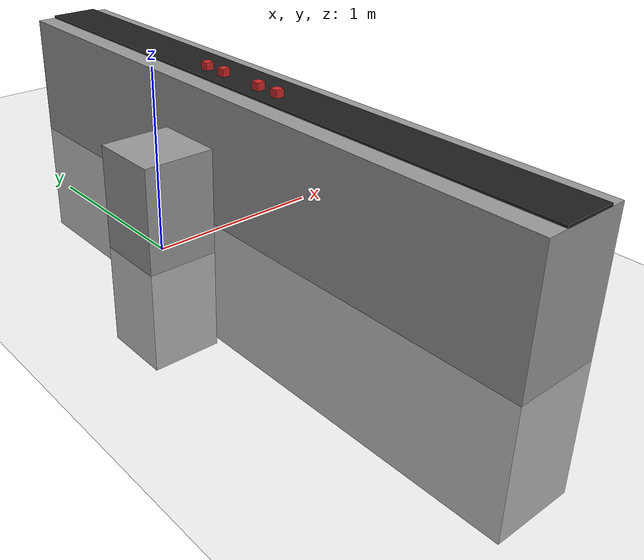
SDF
<sdf version="1.6">
 <world name="ur5_6_cubes">
  <gravity>0 0 -9.81</gravity>
  <physics name="default_physics" default="0" type="ode">
   <max_step_size>0.001</max_step_size>
   <real_time_factor>1</real_time_factor>
   <real_time_update_rate>1000</real_time_update_rate>
  </physics>
  <scene><ambient>0.4 0.4 0.4 1</ambient><background>0.7 0.7 0.7 1</background><shadows>1</shadows></scene>
  <include><uri>model://sun</uri></include>
  <include><uri>model://ground_plane</uri></include>
  <model name="base_central">
   <static>true</static>
   <link name="link">
    <inertial>
     <mass>0.0565</mass>
     <inertia>
      <ixx>2.3541666666666672e-05</ixx>
      <ixy>0</ixy>
      <ixz>0</ixz>
      <iyy>2.3541666666666672e-05</iyy>
      <iyz>0</iyz>
      <izz>2.3541666666666672e-05</izz>
     </inertia>
    </inertial>
    <collision name="collision">
     <geometry><box><size>0.4 0.4 1.17</size></box></geometry>
     <surface>
      <contact>
       <poissons_ratio>0.347</poissons_ratio>
       <elastic_modulus>8.8e+09</elastic_modulus>
       <ode><kp>100000</kp><kd>1</kd><max_vel>1.0</max_vel><min_depth>0.001</min_depth></ode>
      </contact>
      <friction>
       <torsional>
        <coefficient>1.0</coefficient>
        <use_patch_radius>0</use_patch_radius>
        <surface_radius>0.05</surface_radius>
       </torsional>
      </friction>
     </surface>
    </collision>
    <visual name="visual">
     <geometry><box><size>0.4 0.4 1.17</size></box></geometry>
     <material>
      <script><uri>file://media/materials/scripts/gazebo.material</uri><name>Gazebo/Gray</name></script>
     </material>
    </visual>
   </link>
  </model>
  <model name="BAse_conveyor_belt">
   <static>true</static>
   <pose>0.64 0 0 0 0 0</pose>
   <link name="link">
    <inertial>
     <mass>0.0565</mass>
     <inertia>
      <ixx>2.3541666666666672e-05</ixx>
      <ixy>0</ixy>
      <ixz>0</ixz>
      <iyy>2.3541666666666672e-05</iyy>
      <iyz>0</iyz>
      <izz>2.3541666666666672e-05</izz>
     </inertia>
    </inertial>
    <collision name="collision">
     <geometry><box><size>0.003 0.004 0.005</size></box></geometry>
     <surface>
      <contact>
       <poissons_ratio>0.347</poissons_ratio>
       <elastic_modulus>8.8e+09</elastic_modulus>
       <ode><kp>100000</kp><kd>1</kd><max_vel>1.0</max_vel><min_depth>0.001</min_depth></ode>
      </contact>
      <friction>
       <torsional>
        <coefficient>1.0</coefficient>
        <use_patch_radius>0</use_patch_radius>
        <surface_radius>0.05</surface_radius>
       </torsional>
      </friction>
     </surface>
    </collision>
    <visual name="visual">
     <geometry><box><size>0.5 4 1.53</size></box></geometry>
     <material>
      <script><uri>file://media/materials/scripts/gazebo.material</uri><name>Gazebo/Gray</name></script>
     </material>
    </visual>
   </link>
  </model>
  <model name="belt">
   <static>true</static>
   <pose>0.655 0 0.755 0 0 0</pose>
   <link name="link">
    <inertial>
     <mass>2000</mass>
     <inertia>
      <ixx>2.3541666666666672e-05</ixx>
      <ixy>0</ixy>
      <ixz>0</ixz>
      <iyy>2.3541666666666672e-05</iyy>
      <iyz>0</iyz>
      <izz>2.3541666666666672e-05</izz>
     </inertia>
    </inertial>
    <collision name="collision">
     <geometry><box><size>0.3 4 0.05</size></box></geometry>
     <surface>
      <contact>
       <poissons_ratio>0.347</poissons_ratio>
       <elastic_modulus>8.8e+09</elastic_modulus>
       <ode><kp>100000</kp><kd>1</kd><max_vel>1.0</max_vel><min_depth>0.001</min_depth></ode>
      </contact>
      <friction>
       <torsional>
        <coefficient>1.0</coefficient>
        <use_patch_radius>0</use_patch_radius>
        <surface_radius>0.05</surface_radius>
       </torsional>
      </friction>
     </surface>
    </collision>
    <visual name="visual">
     <geometry><box><size>0.3 4 0.05</size></box></geometry>
     <material>
      <script><uri>file://media/materials/scripts/gazebo.material</uri><name>Gazebo/Black</name></script>
     </material>
    </visual>
   </link>
  </model>
  <model name="cube1">
   <pose>0.6 0.375 0.775 0 0 0</pose>
   <link name="link">
    <pose>0 0 0.025 0 0 0</pose>
    <inertial>
     <mass>0.0565</mass>
     <inertia>
      <ixx>2.3541666666666672e-05</ixx>
      <ixy>0</ixy>
      <ixz>0</ixz>
      <iyy>2.3541666666666672e-05</iyy>
      <iyz>0</iyz>
      <izz>2.3541666666666672e-05</izz>
     </inertia>
    </inertial>
    <collision name="collision">
     <geometry><box><size>0.05 0.05 0.05</size></box></geometry>
     <surface>
      <contact>
       <poissons_ratio>0.347</poissons_ratio>
       <elastic_modulus>8.8e+09</elastic_modulus>
       <ode><kp>100000</kp><kd>1</kd><max_vel>1.0</max_vel><min_depth>0.001</min_depth></ode>
      </contact>
      <friction>
       <torsional>
        <coefficient>1.0</coefficient>
        <use_patch_radius>0</use_patch_radius>
        <surface_radius>0.05</surface_radius>
       </torsional>
      </friction>
     </surface>
    </collision>
    <visual name="visual">
     <geometry><box><size>0.05 0.05 0.05</size></box></geometry>
     <material>
      <script><uri>file://media/materials/scripts/gazebo.material</uri><name>Gazebo/Red</name></script>
     </material>
    </visual>
   </link>
  </model>
  <model name="cube2">
   <pose>0.6 0.225 0.775 0 0 0</pose>
   <link name="link">
    <pose>0 0 0.025 0 0 0</pose>
    <inertial>
     <mass>0.0565</mass>
     <inertia>
      <ixx>2.3541666666666672e-05</ixx>
      <ixy>0</ixy>
      <ixz>0</ixz>
      <iyy>2.3541666666666672e-05</iyy>
      <iyz>0</iyz>
      <izz>2.3541666666666672e-05</izz>
     </inertia>
    </inertial>
    <collision name="collision">
     <geometry><box><size>0.05 0.05 0.05</size></box></geometry>
     <surface>
      <contact>
       <poissons_ratio>0.347</poissons_ratio>
       <elastic_modulus>8.8e+09</elastic_modulus>
       <ode><kp>100000</kp><kd>1</kd><max_vel>1.0</max_vel><min_depth>0.001</min_depth></ode>
      </contact>
      <friction>
       <torsional>
        <coefficient>1.0</coefficient>
        <use_patch_radius>0</use_patch_radius>
        <surface_radius>0.05</surface_radius>
       </torsional>
      </friction>
     </surface>
    </collision>
    <visual name="visual">
     <geometry><box><size>0.05 0.05 0.05</size></box></geometry>
     <material>
      <script><uri>file://media/materials/scripts/gazebo.material</uri><name>Gazebo/Red</name></script>
     </material>
    </visual>
   </link>
  </model>
  <model name="cube4">
   <pose>0.6 -0.075 0.775 0 0 0</pose>
   <link name="link">
    <pose>0 0 0.025 0 0 0</pose>
    <inertial>
     <mass>0.0565</mass>
     <inertia>
      <ixx>2.3541666666666672e-05</ixx>
      <ixy>0</ixy>
      <ixz>0</ixz>
      <iyy>2.3541666666666672e-05</iyy>
      <iyz>0</iyz>
      <izz>2.3541666666666672e-05</izz>
     </inertia>
    </inertial>
    <collision name="collision">
     <geometry><box><size>0.05 0.05 0.05</size></box></geometry>
     <surface>
      <contact>
       <poissons_ratio>0.347</poissons_ratio>
       <elastic_modulus>8.8e+09</elastic_modulus>
       <ode><kp>100000</kp><kd>1</kd><max_vel>1.0</max_vel><min_depth>0.001</min_depth></ode>
      </contact>
      <friction>
       <torsional>
        <coefficient>1.0</coefficient>
        <use_patch_radius>0</use_patch_radius>
        <surface_radius>0.05</surface_radius>
       </torsional>
      </friction>
     </surface>
    </collision>
    <visual name="visual">
     <geometry><box><size>0.05 0.05 0.05</size></box></geometry>
     <material>
      <script><uri>file://media/materials/scripts/gazebo.material</uri><name>Gazebo/Red</name></script>
     </material>
    </visual>
   </link>
  </model>
  <model name="cube5">
   <pose>0.6 -0.225 0.775 0 0 0</pose>
   <link name="link">
    <pose>0 0 0.025 0 0 0</pose>
    <inertial>
     <mass>0.0565</mass>
     <inertia>
      <ixx>2.3541666666666672e-05</ixx>
      <ixy>0</ixy>
      <ixz>0</ixz>
      <iyy>2.3541666666666672e-05</iyy>
      <iyz>0</iyz>
      <izz>2.3541666666666672e-05</izz>
     </inertia>
    </inertial>
    <collision name="collision">
     <geometry><box><size>0.05 0.05 0.05</size></box></geometry>
     <surface>
      <contact>
       <poissons_ratio>0.347</poissons_ratio>
       <elastic_modulus>8.8e+09</elastic_modulus>
       <ode><kp>100000</kp><kd>1</kd><max_vel>1.0</max_vel><min_depth>0.001</min_depth></ode>
      </contact>
      <friction>
       <torsional>
        <coefficient>1.0</coefficient>
        <use_patch_radius>0</use_patch_radius>
        <surface_radius>0.05</surface_radius>
       </torsional>
      </friction>
     </surface>
    </collision>
    <visual name="visual">
     <geometry><box><size>0.05 0.05 0.05</size></box></geometry>
     <material>
      <script><uri>file://media/materials/scripts/gazebo.material</uri><name>Gazebo/Red</name></script>
     </material>
    </visual>
   </link>
  </model>
 </world>
</sdf>
